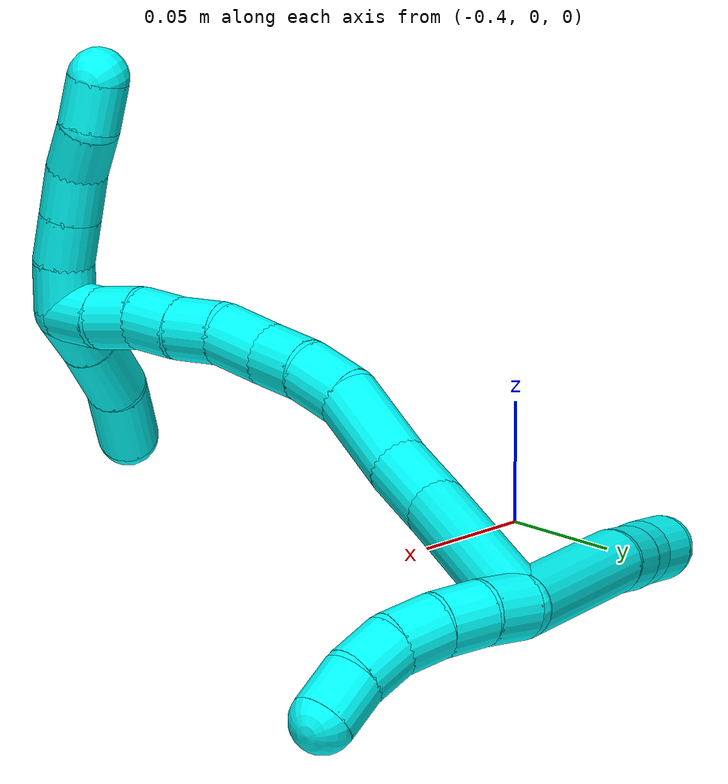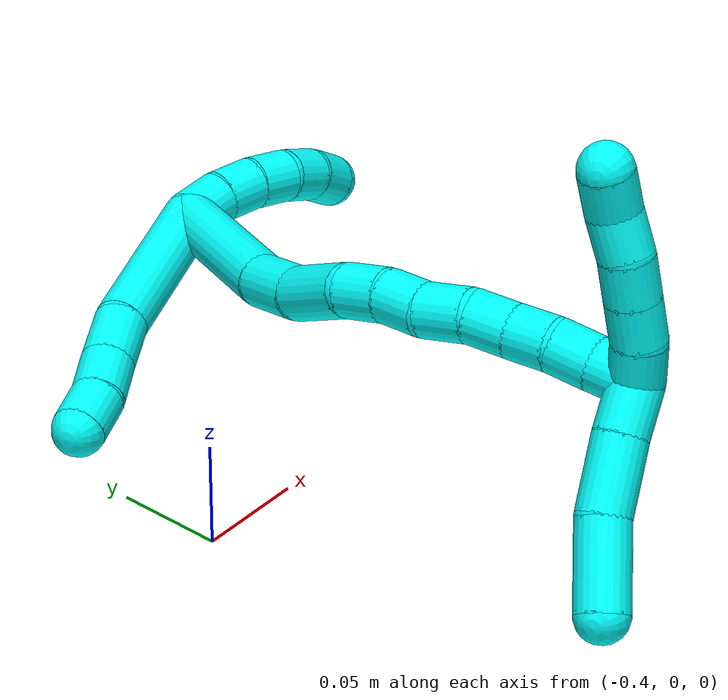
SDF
<sdf version="1.7">
 <world name="default">
  <model name="3">
   <static>0</static>
   <link name="3">
    <collision name="collision-cylinder-e_1_2_8">
     <pose>-0.010062 0.004242 0.039868 -0.106001 -0.2459 0.013111</pose>
     <geometry><cylinder><radius>0.0125</radius><length>0.082673</length></cylinder></geometry>
     <surface>
      <friction><ode><mu>1.16</mu><mu2>1.16</mu2><slip1>0</slip1><slip2>0</slip2></ode></friction>
      <contact><ode><kp>1e+06</kp><kd>1</kd><max_vel>0</max_vel><min_depth>0.001</min_depth></ode></contact>
     </surface>
    </collision>
    <visual name="visual-cylinder-e_1_2_8">
     <pose>-0.010062 0.004242 0.039868 -0.106001 -0.2459 0.013111</pose>
     <geometry><cylinder><radius>0.0125</radius><length>0.082673</length></cylinder></geometry>
     <material><ambient>0.003922 1 0.996078 1</ambient></material>
    </visual>
    <collision name="collision-cylinder-e_2_8_9">
     <pose>-0.025577 0.009368 0.090913 -0.078959 -0.452608 0.018189</pose>
     <geometry><cylinder><radius>0.0125</radius><length>0.024936</length></cylinder></geometry>
     <surface>
      <friction><ode><mu>1.16</mu><mu2>1.16</mu2><slip1>0</slip1><slip2>0</slip2></ode></friction>
      <contact><ode><kp>1e+06</kp><kd>1</kd><max_vel>0</max_vel><min_depth>0.001</min_depth></ode></contact>
     </surface>
    </collision>
    <visual name="visual-cylinder-e_2_8_9">
     <pose>-0.025577 0.009368 0.090913 -0.078959 -0.452608 0.018189</pose>
     <geometry><cylinder><radius>0.0125</radius><length>0.024936</length></cylinder></geometry>
     <material><ambient>0.003922 1 0.996078 1</ambient></material>
    </visual>
    <collision name="collision-cylinder-e_3_9_10">
     <pose>-0.035685 0.010429 0.111681 -0.018335 -0.451898 0.004215</pose>
     <geometry><cylinder><radius>0.0125</radius><length>0.021323</length></cylinder></geometry>
     <surface>
      <friction><ode><mu>1.16</mu><mu2>1.16</mu2><slip1>0</slip1><slip2>0</slip2></ode></friction>
      <contact><ode><kp>1e+06</kp><kd>1</kd><max_vel>0</max_vel><min_depth>0.001</min_depth></ode></contact>
     </surface>
    </collision>
    <visual name="visual-cylinder-e_3_9_10">
     <pose>-0.035685 0.010429 0.111681 -0.018335 -0.451898 0.004215</pose>
     <geometry><cylinder><radius>0.0125</radius><length>0.021323</length></cylinder></geometry>
     <material><ambient>0.003922 1 0.996078 1</ambient></material>
    </visual>
    <collision name="collision-cylinder-e_4_10_6">
     <pose>-0.043577 0.012248 0.13116 -0.164659 -0.312212 0.025972</pose>
     <geometry><cylinder><radius>0.0125</radius><length>0.021068</length></cylinder></geometry>
     <surface>
      <friction><ode><mu>1.16</mu><mu2>1.16</mu2><slip1>0</slip1><slip2>0</slip2></ode></friction>
      <contact><ode><kp>1e+06</kp><kd>1</kd><max_vel>0</max_vel><min_depth>0.001</min_depth></ode></contact>
     </surface>
    </collision>
    <visual name="visual-cylinder-e_4_10_6">
     <pose>-0.043577 0.012248 0.13116 -0.164659 -0.312212 0.025972</pose>
     <geometry><cylinder><radius>0.0125</radius><length>0.021068</length></cylinder></geometry>
     <material><ambient>0.003922 1 0.996078 1</ambient></material>
    </visual>
    <collision name="collision-cylinder-e_1_2_11">
     <pose>0.000247 -0.00409 -0.009122 2.72007 0.024735 0.115496</pose>
     <geometry><cylinder><radius>0.0125</radius><length>0.02</length></cylinder></geometry>
     <surface>
      <friction><ode><mu>1.16</mu><mu2>1.16</mu2><slip1>0</slip1><slip2>0</slip2></ode></friction>
      <contact><ode><kp>1e+06</kp><kd>1</kd><max_vel>0</max_vel><min_depth>0.001</min_depth></ode></contact>
     </surface>
    </collision>
    <visual name="visual-cylinder-e_1_2_11">
     <pose>0.000247 -0.00409 -0.009122 2.72007 0.024735 0.115496</pose>
     <geometry><cylinder><radius>0.0125</radius><length>0.02</length></cylinder></geometry>
     <material><ambient>0.003922 1 0.996078 1</ambient></material>
    </visual>
    <collision name="collision-cylinder-e_2_11_12">
     <pose>-0.000872 -0.012287 -0.027259 2.71417 -0.137136 -0.612943</pose>
     <geometry><cylinder><radius>0.0125</radius><length>0.02</length></cylinder></geometry>
     <surface>
      <friction><ode><mu>1.16</mu><mu2>1.16</mu2><slip1>0</slip1><slip2>0</slip2></ode></friction>
      <contact><ode><kp>1e+06</kp><kd>1</kd><max_vel>0</max_vel><min_depth>0.001</min_depth></ode></contact>
     </surface>
    </collision>
    <visual name="visual-cylinder-e_2_11_12">
     <pose>-0.000872 -0.012287 -0.027259 2.71417 -0.137136 -0.612943</pose>
     <geometry><cylinder><radius>0.0125</radius><length>0.02</length></cylinder></geometry>
     <material><ambient>0.003922 1 0.996078 1</ambient></material>
    </visual>
    <collision name="collision-cylinder-e_3_12_13">
     <pose>-0.004949 -0.019817 -0.04527 2.77792 -0.274392 -1.28813</pose>
     <geometry><cylinder><radius>0.0125</radius><length>0.02</length></cylinder></geometry>
     <surface>
      <friction><ode><mu>1.16</mu><mu2>1.16</mu2><slip1>0</slip1><slip2>0</slip2></ode></friction>
      <contact><ode><kp>1e+06</kp><kd>1</kd><max_vel>0</max_vel><min_depth>0.001</min_depth></ode></contact>
     </surface>
    </collision>
    <visual name="visual-cylinder-e_3_12_13">
     <pose>-0.004949 -0.019817 -0.04527 2.77792 -0.274392 -1.28813</pose>
     <geometry><cylinder><radius>0.0125</radius><length>0.02</length></cylinder></geometry>
     <material><ambient>0.003922 1 0.996078 1</ambient></material>
    </visual>
    <collision name="collision-cylinder-e_4_13_14">
     <pose>-0.011212 -0.024175 -0.063567 3.04149 -0.363249 -2.60899</pose>
     <geometry><cylinder><radius>0.0125</radius><length>0.02</length></cylinder></geometry>
     <surface>
      <friction><ode><mu>1.16</mu><mu2>1.16</mu2><slip1>0</slip1><slip2>0</slip2></ode></friction>
      <contact><ode><kp>1e+06</kp><kd>1</kd><max_vel>0</max_vel><min_depth>0.001</min_depth></ode></contact>
     </surface>
    </collision>
    <visual name="visual-cylinder-e_4_13_14">
     <pose>-0.011212 -0.024175 -0.063567 3.04149 -0.363249 -2.60899</pose>
     <geometry><cylinder><radius>0.0125</radius><length>0.02</length></cylinder></geometry>
     <material><ambient>0.003922 1 0.996078 1</ambient></material>
    </visual>
    <collision name="collision-cylinder-e_5_14_5">
     <pose>-0.019396 -0.024224 -0.081686 -3.04152 -0.481483 2.73914</pose>
     <geometry><cylinder><radius>0.0125</radius><length>0.02</length></cylinder></geometry>
     <surface>
      <friction><ode><mu>1.16</mu><mu2>1.16</mu2><slip1>0</slip1><slip2>0</slip2></ode></friction>
      <contact><ode><kp>1e+06</kp><kd>1</kd><max_vel>0</max_vel><min_depth>0.001</min_depth></ode></contact>
     </surface>
    </collision>
    <visual name="visual-cylinder-e_5_14_5">
     <pose>-0.019396 -0.024224 -0.081686 -3.04152 -0.481483 2.73914</pose>
     <geometry><cylinder><radius>0.0125</radius><length>0.02</length></cylinder></geometry>
     <material><ambient>0.003922 1 0.996078 1</ambient></material>
    </visual>
    <collision name="collision-cylinder-e_1_2_15">
     <pose>-0.016121 -0.026543 0.027019 0.776516 -0.402392 -0.166458</pose>
     <geometry><cylinder><radius>0.0125</radius><length>0.082328</length></cylinder></geometry>
     <surface>
      <friction><ode><mu>1.16</mu><mu2>1.16</mu2><slip1>0</slip1><slip2>0</slip2></ode></friction>
      <contact><ode><kp>1e+06</kp><kd>1</kd><max_vel>0</max_vel><min_depth>0.001</min_depth></ode></contact>
     </surface>
    </collision>
    <visual name="visual-cylinder-e_1_2_15">
     <pose>-0.016121 -0.026543 0.027019 0.776516 -0.402392 -0.166458</pose>
     <geometry><cylinder><radius>0.0125</radius><length>0.082328</length></cylinder></geometry>
     <material><ambient>0.003922 1 0.996078 1</ambient></material>
    </visual>
    <collision name="collision-cylinder-e_2_15_16">
     <pose>-0.036648 -0.065046 0.062371 0.962272 -0.293614 -0.154088</pose>
     <geometry><cylinder><radius>0.0125</radius><length>0.030454</length></cylinder></geometry>
     <surface>
      <friction><ode><mu>1.16</mu><mu2>1.16</mu2><slip1>0</slip1><slip2>0</slip2></ode></friction>
      <contact><ode><kp>1e+06</kp><kd>1</kd><max_vel>0</max_vel><min_depth>0.001</min_depth></ode></contact>
     </surface>
    </collision>
    <visual name="visual-cylinder-e_2_15_16">
     <pose>-0.036648 -0.065046 0.062371 0.962272 -0.293614 -0.154088</pose>
     <geometry><cylinder><radius>0.0125</radius><length>0.030454</length></cylinder></geometry>
     <material><ambient>0.003922 1 0.996078 1</ambient></material>
    </visual>
    <collision name="collision-cylinder-e_3_16_17">
     <pose>-0.042958 -0.094087 0.079716 1.08528 -0.098213 -0.059255</pose>
     <geometry><cylinder><radius>0.0125</radius><length>0.038816</length></cylinder></geometry>
     <surface>
      <friction><ode><mu>1.16</mu><mu2>1.16</mu2><slip1>0</slip1><slip2>0</slip2></ode></friction>
      <contact><ode><kp>1e+06</kp><kd>1</kd><max_vel>0</max_vel><min_depth>0.001</min_depth></ode></contact>
     </surface>
    </collision>
    <visual name="visual-cylinder-e_3_16_17">
     <pose>-0.042958 -0.094087 0.079716 1.08528 -0.098213 -0.059255</pose>
     <geometry><cylinder><radius>0.0125</radius><length>0.038816</length></cylinder></geometry>
     <material><ambient>0.003922 1 0.996078 1</ambient></material>
    </visual>
    <collision name="collision-cylinder-e_4_17_18">
     <pose>-0.048673 -0.121487 0.092035 1.26075 -0.33833 -0.247979</pose>
     <geometry><cylinder><radius>0.0125</radius><length>0.02297</length></cylinder></geometry>
     <surface>
      <friction><ode><mu>1.16</mu><mu2>1.16</mu2><slip1>0</slip1><slip2>0</slip2></ode></friction>
      <contact><ode><kp>1e+06</kp><kd>1</kd><max_vel>0</max_vel><min_depth>0.001</min_depth></ode></contact>
     </surface>
    </collision>
    <visual name="visual-cylinder-e_4_17_18">
     <pose>-0.048673 -0.121487 0.092035 1.26075 -0.33833 -0.247979</pose>
     <geometry><cylinder><radius>0.0125</radius><length>0.02297</length></cylinder></geometry>
     <material><ambient>0.003922 1 0.996078 1</ambient></material>
    </visual>
    <collision name="collision-cylinder-e_5_18_19">
     <pose>-0.057872 -0.14037 0.098715 1.19555 -0.529358 -0.364981</pose>
     <geometry><cylinder><radius>0.0125</radius><length>0.021334</length></cylinder></geometry>
     <surface>
      <friction><ode><mu>1.16</mu><mu2>1.16</mu2><slip1>0</slip1><slip2>0</slip2></ode></friction>
      <contact><ode><kp>1e+06</kp><kd>1</kd><max_vel>0</max_vel><min_depth>0.001</min_depth></ode></contact>
     </surface>
    </collision>
    <visual name="visual-cylinder-e_5_18_19">
     <pose>-0.057872 -0.14037 0.098715 1.19555 -0.529358 -0.364981</pose>
     <geometry><cylinder><radius>0.0125</radius><length>0.021334</length></cylinder></geometry>
     <material><ambient>0.003922 1 0.996078 1</ambient></material>
    </visual>
    <collision name="collision-cylinder-e_6_19_20">
     <pose>-0.067829 -0.159394 0.103866 1.4025 -0.406832 -0.344898</pose>
     <geometry><cylinder><radius>0.0125</radius><length>0.0231</length></cylinder></geometry>
     <surface>
      <friction><ode><mu>1.16</mu><mu2>1.16</mu2><slip1>0</slip1><slip2>0</slip2></ode></friction>
      <contact><ode><kp>1e+06</kp><kd>1</kd><max_vel>0</max_vel><min_depth>0.001</min_depth></ode></contact>
     </surface>
    </collision>
    <visual name="visual-cylinder-e_6_19_20">
     <pose>-0.067829 -0.159394 0.103866 1.4025 -0.406832 -0.344898</pose>
     <geometry><cylinder><radius>0.0125</radius><length>0.0231</length></cylinder></geometry>
     <material><ambient>0.003922 1 0.996078 1</ambient></material>
    </visual>
    <collision name="collision-cylinder-e_7_20_21">
     <pose>-0.078815 -0.17787 0.106494 1.465 -0.672047 -0.608761</pose>
     <geometry><cylinder><radius>0.0125</radius><length>0.020609</length></cylinder></geometry>
     <surface>
      <friction><ode><mu>1.16</mu><mu2>1.16</mu2><slip1>0</slip1><slip2>0</slip2></ode></friction>
      <contact><ode><kp>1e+06</kp><kd>1</kd><max_vel>0</max_vel><min_depth>0.001</min_depth></ode></contact>
     </surface>
    </collision>
    <visual name="visual-cylinder-e_7_20_21">
     <pose>-0.078815 -0.17787 0.106494 1.465 -0.672047 -0.608761</pose>
     <geometry><cylinder><radius>0.0125</radius><length>0.020609</length></cylinder></geometry>
     <material><ambient>0.003922 1 0.996078 1</ambient></material>
    </visual>
    <collision name="collision-cylinder-e_8_21_22">
     <pose>-0.090768 -0.194071 0.109213 1.34639 -0.583283 -0.469956</pose>
     <geometry><cylinder><radius>0.0125</radius><length>0.02011</length></cylinder></geometry>
     <surface>
      <friction><ode><mu>1.16</mu><mu2>1.16</mu2><slip1>0</slip1><slip2>0</slip2></ode></friction>
      <contact><ode><kp>1e+06</kp><kd>1</kd><max_vel>0</max_vel><min_depth>0.001</min_depth></ode></contact>
     </surface>
    </collision>
    <visual name="visual-cylinder-e_8_21_22">
     <pose>-0.090768 -0.194071 0.109213 1.34639 -0.583283 -0.469956</pose>
     <geometry><cylinder><radius>0.0125</radius><length>0.02011</length></cylinder></geometry>
     <material><ambient>0.003922 1 0.996078 1</ambient></material>
    </visual>
    <collision name="collision-cylinder-e_9_22_23">
     <pose>-0.103306 -0.209434 0.111841 1.46536 -0.769822 -0.699078</pose>
     <geometry><cylinder><radius>0.0125</radius><length>0.020114</length></cylinder></geometry>
     <surface>
      <friction><ode><mu>1.16</mu><mu2>1.16</mu2><slip1>0</slip1><slip2>0</slip2></ode></friction>
      <contact><ode><kp>1e+06</kp><kd>1</kd><max_vel>0</max_vel><min_depth>0.001</min_depth></ode></contact>
     </surface>
    </collision>
    <visual name="visual-cylinder-e_9_22_23">
     <pose>-0.103306 -0.209434 0.111841 1.46536 -0.769822 -0.699078</pose>
     <geometry><cylinder><radius>0.0125</radius><length>0.020114</length></cylinder></geometry>
     <material><ambient>0.003922 1 0.996078 1</ambient></material>
    </visual>
    <collision name="collision-cylinder-e_10_23_1">
     <pose>-0.116346 -0.224351 0.114909 1.2808 -0.642418 -0.486079</pose>
     <geometry><cylinder><radius>0.0125</radius><length>0.020166</length></cylinder></geometry>
     <surface>
      <friction><ode><mu>1.16</mu><mu2>1.16</mu2><slip1>0</slip1><slip2>0</slip2></ode></friction>
      <contact><ode><kp>1e+06</kp><kd>1</kd><max_vel>0</max_vel><min_depth>0.001</min_depth></ode></contact>
     </surface>
    </collision>
    <visual name="visual-cylinder-e_10_23_1">
     <pose>-0.116346 -0.224351 0.114909 1.2808 -0.642418 -0.486079</pose>
     <geometry><cylinder><radius>0.0125</radius><length>0.020166</length></cylinder></geometry>
     <material><ambient>0.003922 1 0.996078 1</ambient></material>
    </visual>
    <collision name="collision-cylinder-e_1_1_24">
     <pose>-0.130498 -0.226447 0.124088 -0.687376 -0.739662 0.275727</pose>
     <geometry><cylinder><radius>0.0125</radius><length>0.024066</length></cylinder></geometry>
     <surface>
      <friction><ode><mu>1.16</mu><mu2>1.16</mu2><slip1>0</slip1><slip2>0</slip2></ode></friction>
      <contact><ode><kp>1e+06</kp><kd>1</kd><max_vel>0</max_vel><min_depth>0.001</min_depth></ode></contact>
     </surface>
    </collision>
    <visual name="visual-cylinder-e_1_1_24">
     <pose>-0.130498 -0.226447 0.124088 -0.687376 -0.739662 0.275727</pose>
     <geometry><cylinder><radius>0.0125</radius><length>0.024066</length></cylinder></geometry>
     <material><ambient>0.003922 1 0.996078 1</ambient></material>
    </visual>
    <collision name="collision-cylinder-e_2_24_25">
     <pose>-0.151125 -0.213605 0.140742 -0.634477 -0.80031 0.275984</pose>
     <geometry><cylinder><radius>0.0125</radius><length>0.034886</length></cylinder></geometry>
     <surface>
      <friction><ode><mu>1.16</mu><mu2>1.16</mu2><slip1>0</slip1><slip2>0</slip2></ode></friction>
      <contact><ode><kp>1e+06</kp><kd>1</kd><max_vel>0</max_vel><min_depth>0.001</min_depth></ode></contact>
     </surface>
    </collision>
    <visual name="visual-cylinder-e_2_24_25">
     <pose>-0.151125 -0.213605 0.140742 -0.634477 -0.80031 0.275984</pose>
     <geometry><cylinder><radius>0.0125</radius><length>0.034886</length></cylinder></geometry>
     <material><ambient>0.003922 1 0.996078 1</ambient></material>
    </visual>
    <collision name="collision-cylinder-e_3_25_4">
     <pose>-0.180497 -0.201283 0.161058 -0.452607 -0.963597 0.239639</pose>
     <geometry><cylinder><radius>0.0125</radius><length>0.041048</length></cylinder></geometry>
     <surface>
      <friction><ode><mu>1.16</mu><mu2>1.16</mu2><slip1>0</slip1><slip2>0</slip2></ode></friction>
      <contact><ode><kp>1e+06</kp><kd>1</kd><max_vel>0</max_vel><min_depth>0.001</min_depth></ode></contact>
     </surface>
    </collision>
    <visual name="visual-cylinder-e_3_25_4">
     <pose>-0.180497 -0.201283 0.161058 -0.452607 -0.963597 0.239639</pose>
     <geometry><cylinder><radius>0.0125</radius><length>0.041048</length></cylinder></geometry>
     <material><ambient>0.003922 1 0.996078 1</ambient></material>
    </visual>
    <collision name="collision-cylinder-e_1_1_26">
     <pose>-0.114203 -0.237678 0.118542 1.33816 0.958703 0.779952</pose>
     <geometry><cylinder><radius>0.0125</radius><length>0.02</length></cylinder></geometry>
     <surface>
      <friction><ode><mu>1.16</mu><mu2>1.16</mu2><slip1>0</slip1><slip2>0</slip2></ode></friction>
      <contact><ode><kp>1e+06</kp><kd>1</kd><max_vel>0</max_vel><min_depth>0.001</min_depth></ode></contact>
     </surface>
    </collision>
    <visual name="visual-cylinder-e_1_1_26">
     <pose>-0.114203 -0.237678 0.118542 1.33816 0.958703 0.779952</pose>
     <geometry><cylinder><radius>0.0125</radius><length>0.02</length></cylinder></geometry>
     <material><ambient>0.003922 1 0.996078 1</ambient></material>
    </visual>
    <collision name="collision-cylinder-e_2_26_27">
     <pose>-0.096872 -0.247104 0.121149 1.24823 1.15455 0.877108</pose>
     <geometry><cylinder><radius>0.0125</radius><length>0.02</length></cylinder></geometry>
     <surface>
      <friction><ode><mu>1.16</mu><mu2>1.16</mu2><slip1>0</slip1><slip2>0</slip2></ode></friction>
      <contact><ode><kp>1e+06</kp><kd>1</kd><max_vel>0</max_vel><min_depth>0.001</min_depth></ode></contact>
     </surface>
    </collision>
    <visual name="visual-cylinder-e_2_26_27">
     <pose>-0.096872 -0.247104 0.121149 1.24823 1.15455 0.877108</pose>
     <geometry><cylinder><radius>0.0125</radius><length>0.02</length></cylinder></geometry>
     <material><ambient>0.003922 1 0.996078 1</ambient></material>
    </visual>
    <collision name="collision-cylinder-e_3_27_28">
     <pose>-0.078578 -0.254773 0.123696 1.25191 1.15513 0.880578</pose>
     <geometry><cylinder><radius>0.0125</radius><length>0.02</length></cylinder></geometry>
     <surface>
      <friction><ode><mu>1.16</mu><mu2>1.16</mu2><slip1>0</slip1><slip2>0</slip2></ode></friction>
      <contact><ode><kp>1e+06</kp><kd>1</kd><max_vel>0</max_vel><min_depth>0.001</min_depth></ode></contact>
     </surface>
    </collision>
    <visual name="visual-cylinder-e_3_27_28">
     <pose>-0.078578 -0.254773 0.123696 1.25191 1.15513 0.880578</pose>
     <geometry><cylinder><radius>0.0125</radius><length>0.02</length></cylinder></geometry>
     <material><ambient>0.003922 1 0.996078 1</ambient></material>
    </visual>
    <collision name="collision-cylinder-e_4_28_29">
     <pose>-0.059678 -0.260819 0.125116 1.50131 1.34717 1.27993</pose>
     <geometry><cylinder><radius>0.0125</radius><length>0.02</length></cylinder></geometry>
     <surface>
      <friction><ode><mu>1.16</mu><mu2>1.16</mu2><slip1>0</slip1><slip2>0</slip2></ode></friction>
      <contact><ode><kp>1e+06</kp><kd>1</kd><max_vel>0</max_vel><min_depth>0.001</min_depth></ode></contact>
     </surface>
    </collision>
    <visual name="visual-cylinder-e_4_28_29">
     <pose>-0.059678 -0.260819 0.125116 1.50131 1.34717 1.27993</pose>
     <geometry><cylinder><radius>0.0125</radius><length>0.02</length></cylinder></geometry>
     <material><ambient>0.003922 1 0.996078 1</ambient></material>
    </visual>
    <collision name="collision-cylinder-e_5_29_3">
     <pose>-0.041015 -0.266877 0.127675 1.01181 1.10004 0.65489</pose>
     <geometry><cylinder><radius>0.0125</radius><length>0.02</length></cylinder></geometry>
     <surface>
      <friction><ode><mu>1.16</mu><mu2>1.16</mu2><slip1>0</slip1><slip2>0</slip2></ode></friction>
      <contact><ode><kp>1e+06</kp><kd>1</kd><max_vel>0</max_vel><min_depth>0.001</min_depth></ode></contact>
     </surface>
    </collision>
    <visual name="visual-cylinder-e_5_29_3">
     <pose>-0.041015 -0.266877 0.127675 1.01181 1.10004 0.65489</pose>
     <geometry><cylinder><radius>0.0125</radius><length>0.02</length></cylinder></geometry>
     <material><ambient>0.003922 1 0.996078 1</ambient></material>
    </visual>
    <collision name="collision-sphere-3">
     <pose>-0.032103 -0.270722 0.130081 0 -0 0</pose>
     <geometry><sphere><radius>0.0125</radius></sphere></geometry>
     <surface>
      <friction><ode><mu>1.16</mu><mu2>1.16</mu2><slip1>0</slip1><slip2>0</slip2></ode></friction>
      <contact><ode><kp>1e+06</kp><kd>1</kd><max_vel>0</max_vel><min_depth>0.001</min_depth></ode></contact>
     </surface>
    </collision>
    <visual name="visual-sphere-3">
     <pose>-0.032103 -0.270722 0.130081 0 -0 0</pose>
     <geometry><sphere><radius>0.0125</radius></sphere></geometry>
     <material><ambient>0.003922 1 0.996078 1</ambient></material>
    </visual>
    <collision name="collision-sphere-29">
     <pose>-0.049927 -0.263032 0.12527 0 -0 0</pose>
     <geometry><sphere><radius>0.0125</radius></sphere></geometry>
     <surface>
      <friction><ode><mu>1.16</mu><mu2>1.16</mu2><slip1>0</slip1><slip2>0</slip2></ode></friction>
      <contact><ode><kp>1e+06</kp><kd>1</kd><max_vel>0</max_vel><min_depth>0.001</min_depth></ode></contact>
     </surface>
    </collision>
    <visual name="visual-sphere-29">
     <pose>-0.049927 -0.263032 0.12527 0 -0 0</pose>
     <geometry><sphere><radius>0.0125</radius></sphere></geometry>
     <material><ambient>0.003922 1 0.996078 1</ambient></material>
    </visual>
    <collision name="collision-sphere-28">
     <pose>-0.069429 -0.258607 0.124962 0 -0 0</pose>
     <geometry><sphere><radius>0.0125</radius></sphere></geometry>
     <surface>
      <friction><ode><mu>1.16</mu><mu2>1.16</mu2><slip1>0</slip1><slip2>0</slip2></ode></friction>
      <contact><ode><kp>1e+06</kp><kd>1</kd><max_vel>0</max_vel><min_depth>0.001</min_depth></ode></contact>
     </surface>
    </collision>
    <visual name="visual-sphere-28">
     <pose>-0.069429 -0.258607 0.124962 0 -0 0</pose>
     <geometry><sphere><radius>0.0125</radius></sphere></geometry>
     <material><ambient>0.003922 1 0.996078 1</ambient></material>
    </visual>
    <collision name="collision-sphere-27">
     <pose>-0.087726 -0.250938 0.12243 0 -0 0</pose>
     <geometry><sphere><radius>0.0125</radius></sphere></geometry>
     <surface>
      <friction><ode><mu>1.16</mu><mu2>1.16</mu2><slip1>0</slip1><slip2>0</slip2></ode></friction>
      <contact><ode><kp>1e+06</kp><kd>1</kd><max_vel>0</max_vel><min_depth>0.001</min_depth></ode></contact>
     </surface>
    </collision>
    <visual name="visual-sphere-27">
     <pose>-0.087726 -0.250938 0.12243 0 -0 0</pose>
     <geometry><sphere><radius>0.0125</radius></sphere></geometry>
     <material><ambient>0.003922 1 0.996078 1</ambient></material>
    </visual>
    <collision name="collision-sphere-26">
     <pose>-0.106018 -0.243269 0.119867 0 -0 0</pose>
     <geometry><sphere><radius>0.0125</radius></sphere></geometry>
     <surface>
      <friction><ode><mu>1.16</mu><mu2>1.16</mu2><slip1>0</slip1><slip2>0</slip2></ode></friction>
      <contact><ode><kp>1e+06</kp><kd>1</kd><max_vel>0</max_vel><min_depth>0.001</min_depth></ode></contact>
     </surface>
    </collision>
    <visual name="visual-sphere-26">
     <pose>-0.106018 -0.243269 0.119867 0 -0 0</pose>
     <geometry><sphere><radius>0.0125</radius></sphere></geometry>
     <material><ambient>0.003922 1 0.996078 1</ambient></material>
    </visual>
    <collision name="collision-sphere-4">
     <pose>-0.197353 -0.196162 0.171589 0 -0 0</pose>
     <geometry><sphere><radius>0.0125</radius></sphere></geometry>
     <surface>
      <friction><ode><mu>1.16</mu><mu2>1.16</mu2><slip1>0</slip1><slip2>0</slip2></ode></friction>
      <contact><ode><kp>1e+06</kp><kd>1</kd><max_vel>0</max_vel><min_depth>0.001</min_depth></ode></contact>
     </surface>
    </collision>
    <visual name="visual-sphere-4">
     <pose>-0.197353 -0.196162 0.171589 0 -0 0</pose>
     <geometry><sphere><radius>0.0125</radius></sphere></geometry>
     <material><ambient>0.003922 1 0.996078 1</ambient></material>
    </visual>
    <collision name="collision-sphere-25">
     <pose>-0.163642 -0.206404 0.150527 0 -0 0</pose>
     <geometry><sphere><radius>0.0125</radius></sphere></geometry>
     <surface>
      <friction><ode><mu>1.16</mu><mu2>1.16</mu2><slip1>0</slip1><slip2>0</slip2></ode></friction>
      <contact><ode><kp>1e+06</kp><kd>1</kd><max_vel>0</max_vel><min_depth>0.001</min_depth></ode></contact>
     </surface>
    </collision>
    <visual name="visual-sphere-25">
     <pose>-0.163642 -0.206404 0.150527 0 -0 0</pose>
     <geometry><sphere><radius>0.0125</radius></sphere></geometry>
     <material><ambient>0.003922 1 0.996078 1</ambient></material>
    </visual>
    <collision name="collision-sphere-24">
     <pose>-0.138609 -0.220807 0.130958 0 -0 0</pose>
     <geometry><sphere><radius>0.0125</radius></sphere></geometry>
     <surface>
      <friction><ode><mu>1.16</mu><mu2>1.16</mu2><slip1>0</slip1><slip2>0</slip2></ode></friction>
      <contact><ode><kp>1e+06</kp><kd>1</kd><max_vel>0</max_vel><min_depth>0.001</min_depth></ode></contact>
     </surface>
    </collision>
    <visual name="visual-sphere-24">
     <pose>-0.138609 -0.220807 0.130958 0 -0 0</pose>
     <geometry><sphere><radius>0.0125</radius></sphere></geometry>
     <material><ambient>0.003922 1 0.996078 1</ambient></material>
    </visual>
    <collision name="collision-sphere-1">
     <pose>-0.122387 -0.232087 0.117218 0 -0 0</pose>
     <geometry><sphere><radius>0.0125</radius></sphere></geometry>
     <surface>
      <friction><ode><mu>1.16</mu><mu2>1.16</mu2><slip1>0</slip1><slip2>0</slip2></ode></friction>
      <contact><ode><kp>1e+06</kp><kd>1</kd><max_vel>0</max_vel><min_depth>0.001</min_depth></ode></contact>
     </surface>
    </collision>
    <visual name="visual-sphere-1">
     <pose>-0.122387 -0.232087 0.117218 0 -0 0</pose>
     <geometry><sphere><radius>0.0125</radius></sphere></geometry>
     <material><ambient>0.003922 1 0.996078 1</ambient></material>
    </visual>
    <collision name="collision-sphere-23">
     <pose>-0.110305 -0.216615 0.112601 0 -0 0</pose>
     <geometry><sphere><radius>0.0125</radius></sphere></geometry>
     <surface>
      <friction><ode><mu>1.16</mu><mu2>1.16</mu2><slip1>0</slip1><slip2>0</slip2></ode></friction>
      <contact><ode><kp>1e+06</kp><kd>1</kd><max_vel>0</max_vel><min_depth>0.001</min_depth></ode></contact>
     </surface>
    </collision>
    <visual name="visual-sphere-23">
     <pose>-0.110305 -0.216615 0.112601 0 -0 0</pose>
     <geometry><sphere><radius>0.0125</radius></sphere></geometry>
     <material><ambient>0.003922 1 0.996078 1</ambient></material>
    </visual>
    <collision name="collision-sphere-22">
     <pose>-0.096306 -0.202253 0.111081 0 -0 0</pose>
     <geometry><sphere><radius>0.0125</radius></sphere></geometry>
     <surface>
      <friction><ode><mu>1.16</mu><mu2>1.16</mu2><slip1>0</slip1><slip2>0</slip2></ode></friction>
      <contact><ode><kp>1e+06</kp><kd>1</kd><max_vel>0</max_vel><min_depth>0.001</min_depth></ode></contact>
     </surface>
    </collision>
    <visual name="visual-sphere-22">
     <pose>-0.096306 -0.202253 0.111081 0 -0 0</pose>
     <geometry><sphere><radius>0.0125</radius></sphere></geometry>
     <material><ambient>0.003922 1 0.996078 1</ambient></material>
    </visual>
    <collision name="collision-sphere-21">
     <pose>-0.08523 -0.185889 0.107346 0 -0 0</pose>
     <geometry><sphere><radius>0.0125</radius></sphere></geometry>
     <surface>
      <friction><ode><mu>1.16</mu><mu2>1.16</mu2><slip1>0</slip1><slip2>0</slip2></ode></friction>
      <contact><ode><kp>1e+06</kp><kd>1</kd><max_vel>0</max_vel><min_depth>0.001</min_depth></ode></contact>
     </surface>
    </collision>
    <visual name="visual-sphere-21">
     <pose>-0.08523 -0.185889 0.107346 0 -0 0</pose>
     <geometry><sphere><radius>0.0125</radius></sphere></geometry>
     <material><ambient>0.003922 1 0.996078 1</ambient></material>
    </visual>
    <collision name="collision-sphere-11">
     <pose>0.000495 -0.00818 -0.018244 0 -0 0</pose>
     <geometry><sphere><radius>0.0125</radius></sphere></geometry>
     <surface>
      <friction><ode><mu>1.16</mu><mu2>1.16</mu2><slip1>0</slip1><slip2>0</slip2></ode></friction>
      <contact><ode><kp>1e+06</kp><kd>1</kd><max_vel>0</max_vel><min_depth>0.001</min_depth></ode></contact>
     </surface>
    </collision>
    <visual name="visual-sphere-11">
     <pose>0.000495 -0.00818 -0.018244 0 -0 0</pose>
     <geometry><sphere><radius>0.0125</radius></sphere></geometry>
     <material><ambient>0.003922 1 0.996078 1</ambient></material>
    </visual>
    <collision name="collision-sphere-6">
     <pose>-0.046812 0.013891 0.141049 0 -0 0</pose>
     <geometry><sphere><radius>0.0125</radius></sphere></geometry>
     <surface>
      <friction><ode><mu>1.16</mu><mu2>1.16</mu2><slip1>0</slip1><slip2>0</slip2></ode></friction>
      <contact><ode><kp>1e+06</kp><kd>1</kd><max_vel>0</max_vel><min_depth>0.001</min_depth></ode></contact>
     </surface>
    </collision>
    <visual name="visual-sphere-6">
     <pose>-0.046812 0.013891 0.141049 0 -0 0</pose>
     <geometry><sphere><radius>0.0125</radius></sphere></geometry>
     <material><ambient>0.003922 1 0.996078 1</ambient></material>
    </visual>
    <collision name="collision-sphere-10">
     <pose>-0.040341 0.010604 0.12127 0 -0 0</pose>
     <geometry><sphere><radius>0.0125</radius></sphere></geometry>
     <surface>
      <friction><ode><mu>1.16</mu><mu2>1.16</mu2><slip1>0</slip1><slip2>0</slip2></ode></friction>
      <contact><ode><kp>1e+06</kp><kd>1</kd><max_vel>0</max_vel><min_depth>0.001</min_depth></ode></contact>
     </surface>
    </collision>
    <visual name="visual-sphere-10">
     <pose>-0.040341 0.010604 0.12127 0 -0 0</pose>
     <geometry><sphere><radius>0.0125</radius></sphere></geometry>
     <material><ambient>0.003922 1 0.996078 1</ambient></material>
    </visual>
    <collision name="collision-sphere-9">
     <pose>-0.03103 0.010253 0.102091 0 -0 0</pose>
     <geometry><sphere><radius>0.0125</radius></sphere></geometry>
     <surface>
      <friction><ode><mu>1.16</mu><mu2>1.16</mu2><slip1>0</slip1><slip2>0</slip2></ode></friction>
      <contact><ode><kp>1e+06</kp><kd>1</kd><max_vel>0</max_vel><min_depth>0.001</min_depth></ode></contact>
     </surface>
    </collision>
    <visual name="visual-sphere-9">
     <pose>-0.03103 0.010253 0.102091 0 -0 0</pose>
     <geometry><sphere><radius>0.0125</radius></sphere></geometry>
     <material><ambient>0.003922 1 0.996078 1</ambient></material>
    </visual>
    <collision name="collision-sphere-2">
     <geometry><sphere><radius>0.0125</radius></sphere></geometry>
     <surface>
      <friction><ode><mu>1.16</mu><mu2>1.16</mu2><slip1>0</slip1><slip2>0</slip2></ode></friction>
      <contact><ode><kp>1e+06</kp><kd>1</kd><max_vel>0</max_vel><min_depth>0.001</min_depth></ode></contact>
     </surface>
    </collision>
    <visual name="visual-sphere-2">
     <geometry><sphere><radius>0.0125</radius></sphere></geometry>
     <material><ambient>0.003922 1 0.996078 1</ambient></material>
    </visual>
    <collision name="collision-sphere-19">
     <pose>-0.063258 -0.148937 0.102089 0 -0 0</pose>
     <geometry><sphere><radius>0.0125</radius></sphere></geometry>
     <surface>
      <friction><ode><mu>1.16</mu><mu2>1.16</mu2><slip1>0</slip1><slip2>0</slip2></ode></friction>
      <contact><ode><kp>1e+06</kp><kd>1</kd><max_vel>0</max_vel><min_depth>0.001</min_depth></ode></contact>
     </surface>
    </collision>
    <visual name="visual-sphere-19">
     <pose>-0.063258 -0.148937 0.102089 0 -0 0</pose>
     <geometry><sphere><radius>0.0125</radius></sphere></geometry>
     <material><ambient>0.003922 1 0.996078 1</ambient></material>
    </visual>
    <collision name="collision-sphere-8">
     <pose>-0.020125 0.008484 0.079736 0 -0 0</pose>
     <geometry><sphere><radius>0.0125</radius></sphere></geometry>
     <surface>
      <friction><ode><mu>1.16</mu><mu2>1.16</mu2><slip1>0</slip1><slip2>0</slip2></ode></friction>
      <contact><ode><kp>1e+06</kp><kd>1</kd><max_vel>0</max_vel><min_depth>0.001</min_depth></ode></contact>
     </surface>
    </collision>
    <visual name="visual-sphere-8">
     <pose>-0.020125 0.008484 0.079736 0 -0 0</pose>
     <geometry><sphere><radius>0.0125</radius></sphere></geometry>
     <material><ambient>0.003922 1 0.996078 1</ambient></material>
    </visual>
    <collision name="collision-sphere-12">
     <pose>-0.002239 -0.016393 -0.036274 0 -0 0</pose>
     <geometry><sphere><radius>0.0125</radius></sphere></geometry>
     <surface>
      <friction><ode><mu>1.16</mu><mu2>1.16</mu2><slip1>0</slip1><slip2>0</slip2></ode></friction>
      <contact><ode><kp>1e+06</kp><kd>1</kd><max_vel>0</max_vel><min_depth>0.001</min_depth></ode></contact>
     </surface>
    </collision>
    <visual name="visual-sphere-12">
     <pose>-0.002239 -0.016393 -0.036274 0 -0 0</pose>
     <geometry><sphere><radius>0.0125</radius></sphere></geometry>
     <material><ambient>0.003922 1 0.996078 1</ambient></material>
    </visual>
    <collision name="collision-sphere-13">
     <pose>-0.007659 -0.023241 -0.054266 0 -0 0</pose>
     <geometry><sphere><radius>0.0125</radius></sphere></geometry>
     <surface>
      <friction><ode><mu>1.16</mu><mu2>1.16</mu2><slip1>0</slip1><slip2>0</slip2></ode></friction>
      <contact><ode><kp>1e+06</kp><kd>1</kd><max_vel>0</max_vel><min_depth>0.001</min_depth></ode></contact>
     </surface>
    </collision>
    <visual name="visual-sphere-13">
     <pose>-0.007659 -0.023241 -0.054266 0 -0 0</pose>
     <geometry><sphere><radius>0.0125</radius></sphere></geometry>
     <material><ambient>0.003922 1 0.996078 1</ambient></material>
    </visual>
    <collision name="collision-sphere-14">
     <pose>-0.014765 -0.02511 -0.072868 0 -0 0</pose>
     <geometry><sphere><radius>0.0125</radius></sphere></geometry>
     <surface>
      <friction><ode><mu>1.16</mu><mu2>1.16</mu2><slip1>0</slip1><slip2>0</slip2></ode></friction>
      <contact><ode><kp>1e+06</kp><kd>1</kd><max_vel>0</max_vel><min_depth>0.001</min_depth></ode></contact>
     </surface>
    </collision>
    <visual name="visual-sphere-14">
     <pose>-0.014765 -0.02511 -0.072868 0 -0 0</pose>
     <geometry><sphere><radius>0.0125</radius></sphere></geometry>
     <material><ambient>0.003922 1 0.996078 1</ambient></material>
    </visual>
    <collision name="collision-sphere-5">
     <pose>-0.024027 -0.023339 -0.090505 0 -0 0</pose>
     <geometry><sphere><radius>0.0125</radius></sphere></geometry>
     <surface>
      <friction><ode><mu>1.16</mu><mu2>1.16</mu2><slip1>0</slip1><slip2>0</slip2></ode></friction>
      <contact><ode><kp>1e+06</kp><kd>1</kd><max_vel>0</max_vel><min_depth>0.001</min_depth></ode></contact>
     </surface>
    </collision>
    <visual name="visual-sphere-5">
     <pose>-0.024027 -0.023339 -0.090505 0 -0 0</pose>
     <geometry><sphere><radius>0.0125</radius></sphere></geometry>
     <material><ambient>0.003922 1 0.996078 1</ambient></material>
    </visual>
    <collision name="collision-sphere-15">
     <pose>-0.032241 -0.053087 0.054039 0 -0 0</pose>
     <geometry><sphere><radius>0.0125</radius></sphere></geometry>
     <surface>
      <friction><ode><mu>1.16</mu><mu2>1.16</mu2><slip1>0</slip1><slip2>0</slip2></ode></friction>
      <contact><ode><kp>1e+06</kp><kd>1</kd><max_vel>0</max_vel><min_depth>0.001</min_depth></ode></contact>
     </surface>
    </collision>
    <visual name="visual-sphere-15">
     <pose>-0.032241 -0.053087 0.054039 0 -0 0</pose>
     <geometry><sphere><radius>0.0125</radius></sphere></geometry>
     <material><ambient>0.003922 1 0.996078 1</ambient></material>
    </visual>
    <collision name="collision-sphere-16">
     <pose>-0.041055 -0.077005 0.070703 0 -0 0</pose>
     <geometry><sphere><radius>0.0125</radius></sphere></geometry>
     <surface>
      <friction><ode><mu>1.16</mu><mu2>1.16</mu2><slip1>0</slip1><slip2>0</slip2></ode></friction>
      <contact><ode><kp>1e+06</kp><kd>1</kd><max_vel>0</max_vel><min_depth>0.001</min_depth></ode></contact>
     </surface>
    </collision>
    <visual name="visual-sphere-16">
     <pose>-0.041055 -0.077005 0.070703 0 -0 0</pose>
     <geometry><sphere><radius>0.0125</radius></sphere></geometry>
     <material><ambient>0.003922 1 0.996078 1</ambient></material>
    </visual>
    <collision name="collision-sphere-17">
     <pose>-0.044861 -0.111169 0.088729 0 -0 0</pose>
     <geometry><sphere><radius>0.0125</radius></sphere></geometry>
     <surface>
      <friction><ode><mu>1.16</mu><mu2>1.16</mu2><slip1>0</slip1><slip2>0</slip2></ode></friction>
      <contact><ode><kp>1e+06</kp><kd>1</kd><max_vel>0</max_vel><min_depth>0.001</min_depth></ode></contact>
     </surface>
    </collision>
    <visual name="visual-sphere-17">
     <pose>-0.044861 -0.111169 0.088729 0 -0 0</pose>
     <geometry><sphere><radius>0.0125</radius></sphere></geometry>
     <material><ambient>0.003922 1 0.996078 1</ambient></material>
    </visual>
    <collision name="collision-sphere-18">
     <pose>-0.052485 -0.131804 0.09534 0 -0 0</pose>
     <geometry><sphere><radius>0.0125</radius></sphere></geometry>
     <surface>
      <friction><ode><mu>1.16</mu><mu2>1.16</mu2><slip1>0</slip1><slip2>0</slip2></ode></friction>
      <contact><ode><kp>1e+06</kp><kd>1</kd><max_vel>0</max_vel><min_depth>0.001</min_depth></ode></contact>
     </surface>
    </collision>
    <visual name="visual-sphere-18">
     <pose>-0.052485 -0.131804 0.09534 0 -0 0</pose>
     <geometry><sphere><radius>0.0125</radius></sphere></geometry>
     <material><ambient>0.003922 1 0.996078 1</ambient></material>
    </visual>
    <collision name="collision-sphere-20">
     <pose>-0.072399 -0.169851 0.105643 0 -0 0</pose>
     <geometry><sphere><radius>0.0125</radius></sphere></geometry>
     <surface>
      <friction><ode><mu>1.16</mu><mu2>1.16</mu2><slip1>0</slip1><slip2>0</slip2></ode></friction>
      <contact><ode><kp>1e+06</kp><kd>1</kd><max_vel>0</max_vel><min_depth>0.001</min_depth></ode></contact>
     </surface>
    </collision>
    <visual name="visual-sphere-20">
     <pose>-0.072399 -0.169851 0.105643 0 -0 0</pose>
     <geometry><sphere><radius>0.0125</radius></sphere></geometry>
     <material><ambient>0.003922 1 0.996078 1</ambient></material>
    </visual>
    <inertial>
     <pose>-0.057873 -0.107635 0.074394 0 -0 0</pose>
     <mass>0.75</mass>
     <inertia><ixx>0.000105</ixx><ixy>0</ixy><ixz>0</ixz><iyy>9.4e-05</iyy><iyz>0</iyz><izz>0.00011</izz></inertia>
    </inertial>
   </link>
   <pose>-0.251712 0.144352 0.034275 -1.27459 -0.951806 1.61301</pose>
  </model>
 </world>
</sdf>
